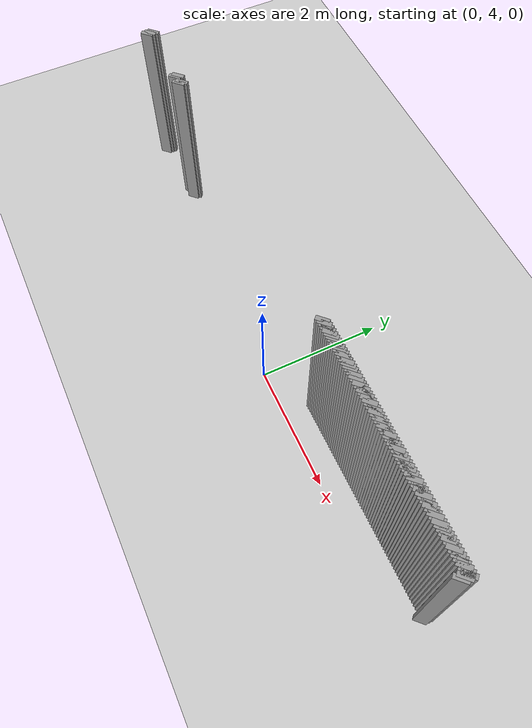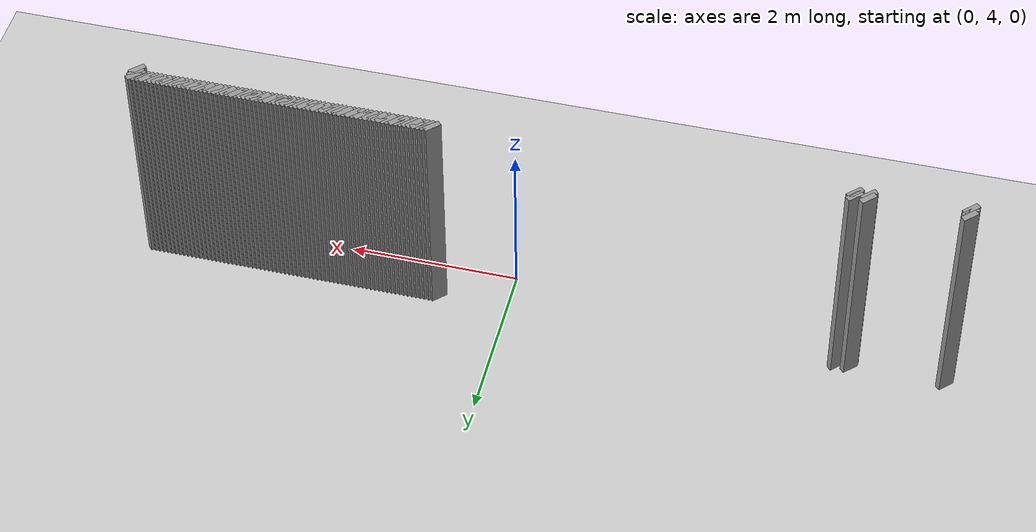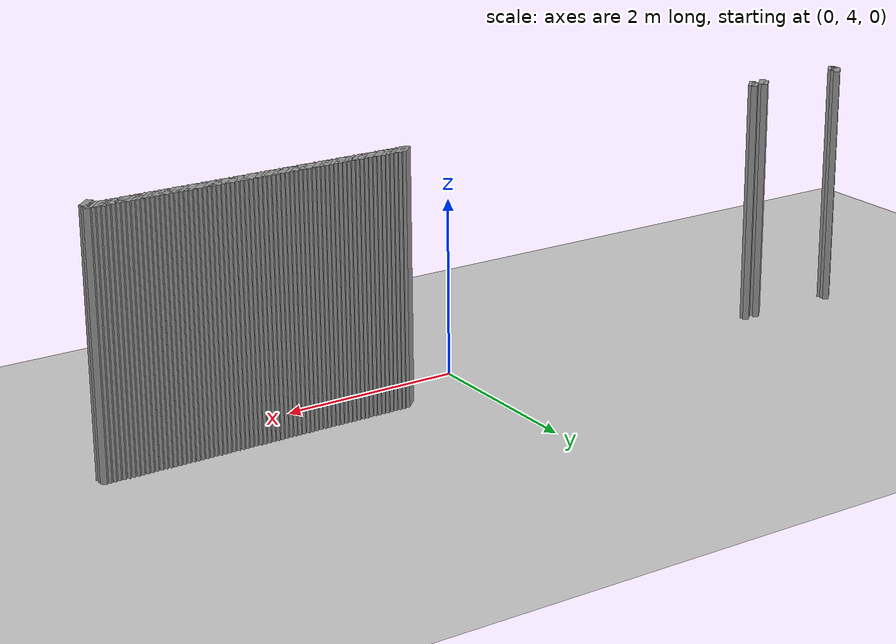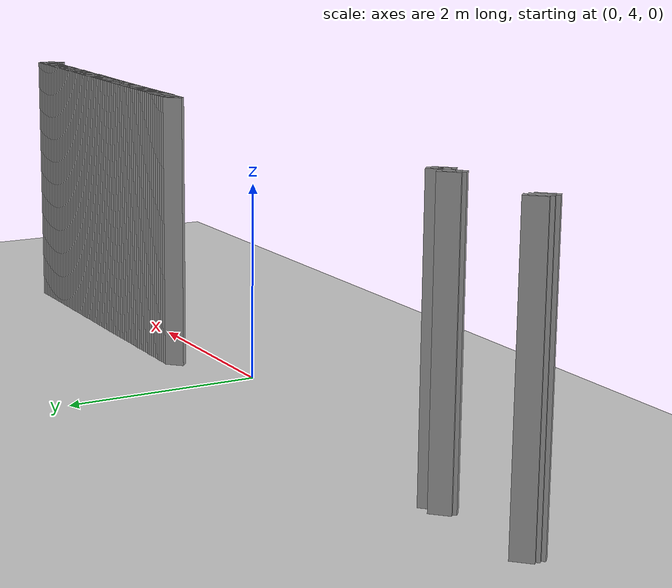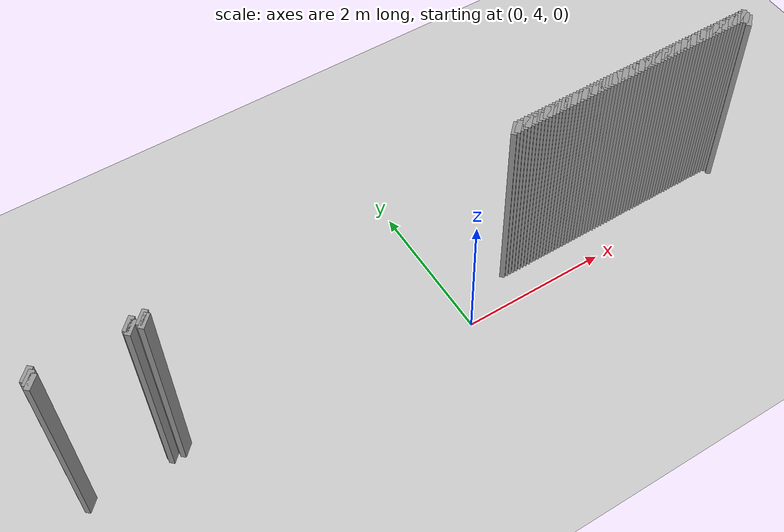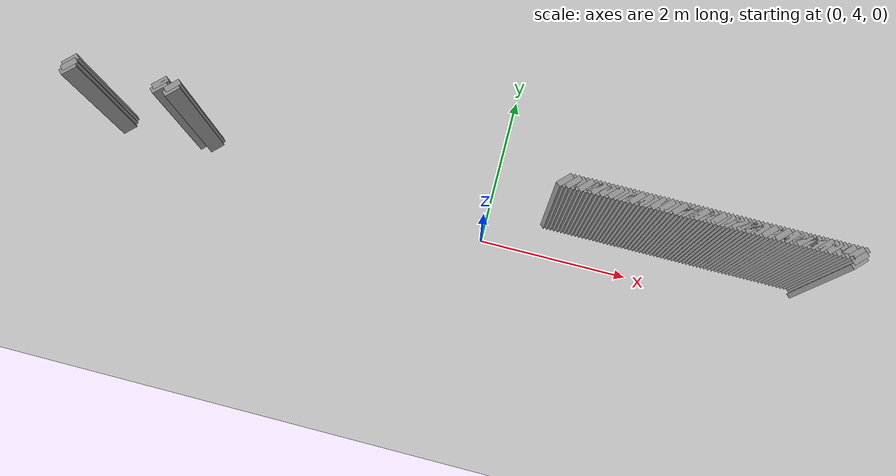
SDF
<sdf version="1.5">
 <world name="default">
  <include><uri>model://ground_plane</uri></include>
  <include><uri>model://sun</uri></include>
  <model name="grey_wall_158">
   <static>1</static>
   <link name="link">
    <pose>0.825 4.475  1.4 0 0 -0.785398163397</pose>
    <collision name="collision"><geometry><box><size>0.0707106781187 .2  2.8</size></box></geometry></collision>
    <visual name="visual">
     <cast_shadows>0</cast_shadows>
     <geometry><box><size>0.0707106781187 .2  2.8</size></box></geometry>
     <material>
      <script>
       <uri>model://grey_wall/materials/scripts</uri>
       <uri>model://grey_wall/materials/textures</uri>
       <name>vrc/grey_wall</name>
      </script>
     </material>
    </visual>
   </link>
  </model>
  <model name="grey_wall_159">
   <static>1</static>
   <link name="link">
    <pose>0.875 4.475  1.4 0 0 -0.785398163397</pose>
    <collision name="collision"><geometry><box><size>0.0707106781187 .2  2.8</size></box></geometry></collision>
    <visual name="visual">
     <cast_shadows>0</cast_shadows>
     <geometry><box><size>0.0707106781187 .2  2.8</size></box></geometry>
     <material>
      <script>
       <uri>model://grey_wall/materials/scripts</uri>
       <uri>model://grey_wall/materials/textures</uri>
       <name>vrc/grey_wall</name>
      </script>
     </material>
    </visual>
   </link>
  </model>
  <model name="grey_wall_160">
   <static>1</static>
   <link name="link">
    <pose>0.925 4.475  1.4 0 0 -0.785398163397</pose>
    <collision name="collision"><geometry><box><size>0.0707106781187 .2  2.8</size></box></geometry></collision>
    <visual name="visual">
     <cast_shadows>0</cast_shadows>
     <geometry><box><size>0.0707106781187 .2  2.8</size></box></geometry>
     <material>
      <script>
       <uri>model://grey_wall/materials/scripts</uri>
       <uri>model://grey_wall/materials/textures</uri>
       <name>vrc/grey_wall</name>
      </script>
     </material>
    </visual>
   </link>
  </model>
  <model name="grey_wall_161">
   <static>1</static>
   <link name="link">
    <pose>0.975 4.475  1.4 0 0 -0.785398163397</pose>
    <collision name="collision"><geometry><box><size>0.0707106781187 .2  2.8</size></box></geometry></collision>
    <visual name="visual">
     <cast_shadows>0</cast_shadows>
     <geometry><box><size>0.0707106781187 .2  2.8</size></box></geometry>
     <material>
      <script>
       <uri>model://grey_wall/materials/scripts</uri>
       <uri>model://grey_wall/materials/textures</uri>
       <name>vrc/grey_wall</name>
      </script>
     </material>
    </visual>
   </link>
  </model>
  <model name="grey_wall_162">
   <static>1</static>
   <link name="link">
    <pose>1.025 4.475  1.4 0 0 -0.785398163397</pose>
    <collision name="collision"><geometry><box><size>0.0707106781187 .2  2.8</size></box></geometry></collision>
    <visual name="visual">
     <cast_shadows>0</cast_shadows>
     <geometry><box><size>0.0707106781187 .2  2.8</size></box></geometry>
     <material>
      <script>
       <uri>model://grey_wall/materials/scripts</uri>
       <uri>model://grey_wall/materials/textures</uri>
       <name>vrc/grey_wall</name>
      </script>
     </material>
    </visual>
   </link>
  </model>
  <model name="grey_wall_163">
   <static>1</static>
   <link name="link">
    <pose>1.075 4.475  1.4 0 0 -0.785398163397</pose>
    <collision name="collision"><geometry><box><size>0.0707106781187 .2  2.8</size></box></geometry></collision>
    <visual name="visual">
     <cast_shadows>0</cast_shadows>
     <geometry><box><size>0.0707106781187 .2  2.8</size></box></geometry>
     <material>
      <script>
       <uri>model://grey_wall/materials/scripts</uri>
       <uri>model://grey_wall/materials/textures</uri>
       <name>vrc/grey_wall</name>
      </script>
     </material>
    </visual>
   </link>
  </model>
  <model name="grey_wall_164">
   <static>1</static>
   <link name="link">
    <pose>1.125 4.475  1.4 0 0 -0.785398163397</pose>
    <collision name="collision"><geometry><box><size>0.0707106781187 .2  2.8</size></box></geometry></collision>
    <visual name="visual">
     <cast_shadows>0</cast_shadows>
     <geometry><box><size>0.0707106781187 .2  2.8</size></box></geometry>
     <material>
      <script>
       <uri>model://grey_wall/materials/scripts</uri>
       <uri>model://grey_wall/materials/textures</uri>
       <name>vrc/grey_wall</name>
      </script>
     </material>
    </visual>
   </link>
  </model>
  <model name="grey_wall_165">
   <static>1</static>
   <link name="link">
    <pose>1.175 4.475  1.4 0 0 -0.785398163397</pose>
    <collision name="collision"><geometry><box><size>0.0707106781187 .2  2.8</size></box></geometry></collision>
    <visual name="visual">
     <cast_shadows>0</cast_shadows>
     <geometry><box><size>0.0707106781187 .2  2.8</size></box></geometry>
     <material>
      <script>
       <uri>model://grey_wall/materials/scripts</uri>
       <uri>model://grey_wall/materials/textures</uri>
       <name>vrc/grey_wall</name>
      </script>
     </material>
    </visual>
   </link>
  </model>
  <model name="grey_wall_166">
   <static>1</static>
   <link name="link">
    <pose>1.225 4.475  1.4 0 0 -0.785398163397</pose>
    <collision name="collision"><geometry><box><size>0.0707106781187 .2  2.8</size></box></geometry></collision>
    <visual name="visual">
     <cast_shadows>0</cast_shadows>
     <geometry><box><size>0.0707106781187 .2  2.8</size></box></geometry>
     <material>
      <script>
       <uri>model://grey_wall/materials/scripts</uri>
       <uri>model://grey_wall/materials/textures</uri>
       <name>vrc/grey_wall</name>
      </script>
     </material>
    </visual>
   </link>
  </model>
  <model name="grey_wall_167">
   <static>1</static>
   <link name="link">
    <pose>1.275 4.475  1.4 0 0 -0.785398163397</pose>
    <collision name="collision"><geometry><box><size>0.0707106781187 .2  2.8</size></box></geometry></collision>
    <visual name="visual">
     <cast_shadows>0</cast_shadows>
     <geometry><box><size>0.0707106781187 .2  2.8</size></box></geometry>
     <material>
      <script>
       <uri>model://grey_wall/materials/scripts</uri>
       <uri>model://grey_wall/materials/textures</uri>
       <name>vrc/grey_wall</name>
      </script>
     </material>
    </visual>
   </link>
  </model>
  <model name="grey_wall_168">
   <static>1</static>
   <link name="link">
    <pose>1.325 4.475  1.4 0 0 -0.785398163397</pose>
    <collision name="collision"><geometry><box><size>0.0707106781187 .2  2.8</size></box></geometry></collision>
    <visual name="visual">
     <cast_shadows>0</cast_shadows>
     <geometry><box><size>0.0707106781187 .2  2.8</size></box></geometry>
     <material>
      <script>
       <uri>model://grey_wall/materials/scripts</uri>
       <uri>model://grey_wall/materials/textures</uri>
       <name>vrc/grey_wall</name>
      </script>
     </material>
    </visual>
   </link>
  </model>
  <model name="grey_wall_169">
   <static>1</static>
   <link name="link">
    <pose>1.375 4.475  1.4 0 0 -0.785398163397</pose>
    <collision name="collision"><geometry><box><size>0.0707106781187 .2  2.8</size></box></geometry></collision>
    <visual name="visual">
     <cast_shadows>0</cast_shadows>
     <geometry><box><size>0.0707106781187 .2  2.8</size></box></geometry>
     <material>
      <script>
       <uri>model://grey_wall/materials/scripts</uri>
       <uri>model://grey_wall/materials/textures</uri>
       <name>vrc/grey_wall</name>
      </script>
     </material>
    </visual>
   </link>
  </model>
  <model name="grey_wall_170">
   <static>1</static>
   <link name="link">
    <pose>1.425 4.475  1.4 0 0 -0.785398163397</pose>
    <collision name="collision"><geometry><box><size>0.0707106781187 .2  2.8</size></box></geometry></collision>
    <visual name="visual">
     <cast_shadows>0</cast_shadows>
     <geometry><box><size>0.0707106781187 .2  2.8</size></box></geometry>
     <material>
      <script>
       <uri>model://grey_wall/materials/scripts</uri>
       <uri>model://grey_wall/materials/textures</uri>
       <name>vrc/grey_wall</name>
      </script>
     </material>
    </visual>
   </link>
  </model>
  <model name="grey_wall_171">
   <static>1</static>
   <link name="link">
    <pose>1.475 4.475  1.4 0 0 -0.785398163397</pose>
    <collision name="collision"><geometry><box><size>0.0707106781187 .2  2.8</size></box></geometry></collision>
    <visual name="visual">
     <cast_shadows>0</cast_shadows>
     <geometry><box><size>0.0707106781187 .2  2.8</size></box></geometry>
     <material>
      <script>
       <uri>model://grey_wall/materials/scripts</uri>
       <uri>model://grey_wall/materials/textures</uri>
       <name>vrc/grey_wall</name>
      </script>
     </material>
    </visual>
   </link>
  </model>
  <model name="grey_wall_172">
   <static>1</static>
   <link name="link">
    <pose>1.525 4.475  1.4 0 0 -0.785398163397</pose>
    <collision name="collision"><geometry><box><size>0.0707106781187 .2  2.8</size></box></geometry></collision>
    <visual name="visual">
     <cast_shadows>0</cast_shadows>
     <geometry><box><size>0.0707106781187 .2  2.8</size></box></geometry>
     <material>
      <script>
       <uri>model://grey_wall/materials/scripts</uri>
       <uri>model://grey_wall/materials/textures</uri>
       <name>vrc/grey_wall</name>
      </script>
     </material>
    </visual>
   </link>
  </model>
  <model name="grey_wall_173">
   <static>1</static>
   <link name="link">
    <pose>1.575 4.475  1.4 0 0 -0.785398163397</pose>
    <collision name="collision"><geometry><box><size>0.0707106781187 .2  2.8</size></box></geometry></collision>
    <visual name="visual">
     <cast_shadows>0</cast_shadows>
     <geometry><box><size>0.0707106781187 .2  2.8</size></box></geometry>
     <material>
      <script>
       <uri>model://grey_wall/materials/scripts</uri>
       <uri>model://grey_wall/materials/textures</uri>
       <name>vrc/grey_wall</name>
      </script>
     </material>
    </visual>
   </link>
  </model>
  <model name="grey_wall_174">
   <static>1</static>
   <link name="link">
    <pose>1.625 4.475  1.4 0 0 -0.785398163397</pose>
    <collision name="collision"><geometry><box><size>0.0707106781187 .2  2.8</size></box></geometry></collision>
    <visual name="visual">
     <cast_shadows>0</cast_shadows>
     <geometry><box><size>0.0707106781187 .2  2.8</size></box></geometry>
     <material>
      <script>
       <uri>model://grey_wall/materials/scripts</uri>
       <uri>model://grey_wall/materials/textures</uri>
       <name>vrc/grey_wall</name>
      </script>
     </material>
    </visual>
   </link>
  </model>
  <model name="grey_wall_175">
   <static>1</static>
   <link name="link">
    <pose>1.675 4.475  1.4 0 0 -0.785398163397</pose>
    <collision name="collision"><geometry><box><size>0.0707106781187 .2  2.8</size></box></geometry></collision>
    <visual name="visual">
     <cast_shadows>0</cast_shadows>
     <geometry><box><size>0.0707106781187 .2  2.8</size></box></geometry>
     <material>
      <script>
       <uri>model://grey_wall/materials/scripts</uri>
       <uri>model://grey_wall/materials/textures</uri>
       <name>vrc/grey_wall</name>
      </script>
     </material>
    </visual>
   </link>
  </model>
  <model name="grey_wall_176">
   <static>1</static>
   <link name="link">
    <pose>1.725 4.475  1.4 0 0 -0.785398163397</pose>
    <collision name="collision"><geometry><box><size>0.0707106781187 .2  2.8</size></box></geometry></collision>
    <visual name="visual">
     <cast_shadows>0</cast_shadows>
     <geometry><box><size>0.0707106781187 .2  2.8</size></box></geometry>
     <material>
      <script>
       <uri>model://grey_wall/materials/scripts</uri>
       <uri>model://grey_wall/materials/textures</uri>
       <name>vrc/grey_wall</name>
      </script>
     </material>
    </visual>
   </link>
  </model>
  <model name="grey_wall_177">
   <static>1</static>
   <link name="link">
    <pose>1.775 4.475  1.4 0 0 -0.785398163397</pose>
    <collision name="collision"><geometry><box><size>0.0707106781187 .2  2.8</size></box></geometry></collision>
    <visual name="visual">
     <cast_shadows>0</cast_shadows>
     <geometry><box><size>0.0707106781187 .2  2.8</size></box></geometry>
     <material>
      <script>
       <uri>model://grey_wall/materials/scripts</uri>
       <uri>model://grey_wall/materials/textures</uri>
       <name>vrc/grey_wall</name>
      </script>
     </material>
    </visual>
   </link>
  </model>
  <model name="grey_wall_178">
   <static>1</static>
   <link name="link">
    <pose>1.825 4.475  1.4 0 0 -0.785398163397</pose>
    <collision name="collision"><geometry><box><size>0.0707106781187 .2  2.8</size></box></geometry></collision>
    <visual name="visual">
     <cast_shadows>0</cast_shadows>
     <geometry><box><size>0.0707106781187 .2  2.8</size></box></geometry>
     <material>
      <script>
       <uri>model://grey_wall/materials/scripts</uri>
       <uri>model://grey_wall/materials/textures</uri>
       <name>vrc/grey_wall</name>
      </script>
     </material>
    </visual>
   </link>
  </model>
  <model name="grey_wall_179">
   <static>1</static>
   <link name="link">
    <pose>1.875 4.475  1.4 0 0 -0.785398163397</pose>
    <collision name="collision"><geometry><box><size>0.0707106781187 .2  2.8</size></box></geometry></collision>
    <visual name="visual">
     <cast_shadows>0</cast_shadows>
     <geometry><box><size>0.0707106781187 .2  2.8</size></box></geometry>
     <material>
      <script>
       <uri>model://grey_wall/materials/scripts</uri>
       <uri>model://grey_wall/materials/textures</uri>
       <name>vrc/grey_wall</name>
      </script>
     </material>
    </visual>
   </link>
  </model>
  <model name="grey_wall_180">
   <static>1</static>
   <link name="link">
    <pose>1.925 4.475  1.4 0 0 -0.785398163397</pose>
    <collision name="collision"><geometry><box><size>0.0707106781187 .2  2.8</size></box></geometry></collision>
    <visual name="visual">
     <cast_shadows>0</cast_shadows>
     <geometry><box><size>0.0707106781187 .2  2.8</size></box></geometry>
     <material>
      <script>
       <uri>model://grey_wall/materials/scripts</uri>
       <uri>model://grey_wall/materials/textures</uri>
       <name>vrc/grey_wall</name>
      </script>
     </material>
    </visual>
   </link>
  </model>
  <model name="grey_wall_181">
   <static>1</static>
   <link name="link">
    <pose>1.975 4.475  1.4 0 0 -0.785398163397</pose>
    <collision name="collision"><geometry><box><size>0.0707106781187 .2  2.8</size></box></geometry></collision>
    <visual name="visual">
     <cast_shadows>0</cast_shadows>
     <geometry><box><size>0.0707106781187 .2  2.8</size></box></geometry>
     <material>
      <script>
       <uri>model://grey_wall/materials/scripts</uri>
       <uri>model://grey_wall/materials/textures</uri>
       <name>vrc/grey_wall</name>
      </script>
     </material>
    </visual>
   </link>
  </model>
  <model name="grey_wall_182">
   <static>1</static>
   <link name="link">
    <pose>2.025 4.475  1.4 0 0 -0.785398163397</pose>
    <collision name="collision"><geometry><box><size>0.0707106781187 .2  2.8</size></box></geometry></collision>
    <visual name="visual">
     <cast_shadows>0</cast_shadows>
     <geometry><box><size>0.0707106781187 .2  2.8</size></box></geometry>
     <material>
      <script>
       <uri>model://grey_wall/materials/scripts</uri>
       <uri>model://grey_wall/materials/textures</uri>
       <name>vrc/grey_wall</name>
      </script>
     </material>
    </visual>
   </link>
  </model>
  <model name="grey_wall_183">
   <static>1</static>
   <link name="link">
    <pose>2.075 4.475  1.4 0 0 -0.785398163397</pose>
    <collision name="collision"><geometry><box><size>0.0707106781187 .2  2.8</size></box></geometry></collision>
    <visual name="visual">
     <cast_shadows>0</cast_shadows>
     <geometry><box><size>0.0707106781187 .2  2.8</size></box></geometry>
     <material>
      <script>
       <uri>model://grey_wall/materials/scripts</uri>
       <uri>model://grey_wall/materials/textures</uri>
       <name>vrc/grey_wall</name>
      </script>
     </material>
    </visual>
   </link>
  </model>
  <model name="grey_wall_184">
   <static>1</static>
   <link name="link">
    <pose>2.125 4.475  1.4 0 0 -0.785398163397</pose>
    <collision name="collision"><geometry><box><size>0.0707106781187 .2  2.8</size></box></geometry></collision>
    <visual name="visual">
     <cast_shadows>0</cast_shadows>
     <geometry><box><size>0.0707106781187 .2  2.8</size></box></geometry>
     <material>
      <script>
       <uri>model://grey_wall/materials/scripts</uri>
       <uri>model://grey_wall/materials/textures</uri>
       <name>vrc/grey_wall</name>
      </script>
     </material>
    </visual>
   </link>
  </model>
  <model name="grey_wall_185">
   <static>1</static>
   <link name="link">
    <pose>2.175 4.475  1.4 0 0 -0.785398163397</pose>
    <collision name="collision"><geometry><box><size>0.0707106781187 .2  2.8</size></box></geometry></collision>
    <visual name="visual">
     <cast_shadows>0</cast_shadows>
     <geometry><box><size>0.0707106781187 .2  2.8</size></box></geometry>
     <material>
      <script>
       <uri>model://grey_wall/materials/scripts</uri>
       <uri>model://grey_wall/materials/textures</uri>
       <name>vrc/grey_wall</name>
      </script>
     </material>
    </visual>
   </link>
  </model>
  <model name="grey_wall_186">
   <static>1</static>
   <link name="link">
    <pose>2.225 4.475  1.4 0 0 -0.785398163397</pose>
    <collision name="collision"><geometry><box><size>0.0707106781187 .2  2.8</size></box></geometry></collision>
    <visual name="visual">
     <cast_shadows>0</cast_shadows>
     <geometry><box><size>0.0707106781187 .2  2.8</size></box></geometry>
     <material>
      <script>
       <uri>model://grey_wall/materials/scripts</uri>
       <uri>model://grey_wall/materials/textures</uri>
       <name>vrc/grey_wall</name>
      </script>
     </material>
    </visual>
   </link>
  </model>
  <model name="grey_wall_187">
   <static>1</static>
   <link name="link">
    <pose>2.275 4.475  1.4 0 0 -0.785398163397</pose>
    <collision name="collision"><geometry><box><size>0.0707106781187 .2  2.8</size></box></geometry></collision>
    <visual name="visual">
     <cast_shadows>0</cast_shadows>
     <geometry><box><size>0.0707106781187 .2  2.8</size></box></geometry>
     <material>
      <script>
       <uri>model://grey_wall/materials/scripts</uri>
       <uri>model://grey_wall/materials/textures</uri>
       <name>vrc/grey_wall</name>
      </script>
     </material>
    </visual>
   </link>
  </model>
  <model name="grey_wall_188">
   <static>1</static>
   <link name="link">
    <pose>2.325 4.475  1.4 0 0 -0.785398163397</pose>
    <collision name="collision"><geometry><box><size>0.0707106781187 .2  2.8</size></box></geometry></collision>
    <visual name="visual">
     <cast_shadows>0</cast_shadows>
     <geometry><box><size>0.0707106781187 .2  2.8</size></box></geometry>
     <material>
      <script>
       <uri>model://grey_wall/materials/scripts</uri>
       <uri>model://grey_wall/materials/textures</uri>
       <name>vrc/grey_wall</name>
      </script>
     </material>
    </visual>
   </link>
  </model>
  <model name="grey_wall_189">
   <static>1</static>
   <link name="link">
    <pose>2.375 4.475  1.4 0 0 -0.785398163397</pose>
    <collision name="collision"><geometry><box><size>0.0707106781187 .2  2.8</size></box></geometry></collision>
    <visual name="visual">
     <cast_shadows>0</cast_shadows>
     <geometry><box><size>0.0707106781187 .2  2.8</size></box></geometry>
     <material>
      <script>
       <uri>model://grey_wall/materials/scripts</uri>
       <uri>model://grey_wall/materials/textures</uri>
       <name>vrc/grey_wall</name>
      </script>
     </material>
    </visual>
   </link>
  </model>
  <model name="grey_wall_190">
   <static>1</static>
   <link name="link">
    <pose>2.425 4.475  1.4 0 0 -0.785398163397</pose>
    <collision name="collision"><geometry><box><size>0.0707106781187 .2  2.8</size></box></geometry></collision>
    <visual name="visual">
     <cast_shadows>0</cast_shadows>
     <geometry><box><size>0.0707106781187 .2  2.8</size></box></geometry>
     <material>
      <script>
       <uri>model://grey_wall/materials/scripts</uri>
       <uri>model://grey_wall/materials/textures</uri>
       <name>vrc/grey_wall</name>
      </script>
     </material>
    </visual>
   </link>
  </model>
  <model name="grey_wall_191">
   <static>1</static>
   <link name="link">
    <pose>2.475 4.475  1.4 0 0 -0.785398163397</pose>
    <collision name="collision"><geometry><box><size>0.0707106781187 .2  2.8</size></box></geometry></collision>
    <visual name="visual">
     <cast_shadows>0</cast_shadows>
     <geometry><box><size>0.0707106781187 .2  2.8</size></box></geometry>
     <material>
      <script>
       <uri>model://grey_wall/materials/scripts</uri>
       <uri>model://grey_wall/materials/textures</uri>
       <name>vrc/grey_wall</name>
      </script>
     </material>
    </visual>
   </link>
  </model>
  <model name="grey_wall_192">
   <static>1</static>
   <link name="link">
    <pose>2.525 4.475  1.4 0 0 -0.785398163397</pose>
    <collision name="collision"><geometry><box><size>0.0707106781187 .2  2.8</size></box></geometry></collision>
    <visual name="visual">
     <cast_shadows>0</cast_shadows>
     <geometry><box><size>0.0707106781187 .2  2.8</size></box></geometry>
     <material>
      <script>
       <uri>model://grey_wall/materials/scripts</uri>
       <uri>model://grey_wall/materials/textures</uri>
       <name>vrc/grey_wall</name>
      </script>
     </material>
    </visual>
   </link>
  </model>
  <model name="grey_wall_193">
   <static>1</static>
   <link name="link">
    <pose>2.575 4.475  1.4 0 0 -0.785398163397</pose>
    <collision name="collision"><geometry><box><size>0.0707106781187 .2  2.8</size></box></geometry></collision>
    <visual name="visual">
     <cast_shadows>0</cast_shadows>
     <geometry><box><size>0.0707106781187 .2  2.8</size></box></geometry>
     <material>
      <script>
       <uri>model://grey_wall/materials/scripts</uri>
       <uri>model://grey_wall/materials/textures</uri>
       <name>vrc/grey_wall</name>
      </script>
     </material>
    </visual>
   </link>
  </model>
  <model name="grey_wall_194">
   <static>1</static>
   <link name="link">
    <pose>2.625 4.475  1.4 0 0 -0.785398163397</pose>
    <collision name="collision"><geometry><box><size>0.0707106781187 .2  2.8</size></box></geometry></collision>
    <visual name="visual">
     <cast_shadows>0</cast_shadows>
     <geometry><box><size>0.0707106781187 .2  2.8</size></box></geometry>
     <material>
      <script>
       <uri>model://grey_wall/materials/scripts</uri>
       <uri>model://grey_wall/materials/textures</uri>
       <name>vrc/grey_wall</name>
      </script>
     </material>
    </visual>
   </link>
  </model>
  <model name="grey_wall_195">
   <static>1</static>
   <link name="link">
    <pose>2.675 4.475  1.4 0 0 -0.785398163397</pose>
    <collision name="collision"><geometry><box><size>0.0707106781187 .2  2.8</size></box></geometry></collision>
    <visual name="visual">
     <cast_shadows>0</cast_shadows>
     <geometry><box><size>0.0707106781187 .2  2.8</size></box></geometry>
     <material>
      <script>
       <uri>model://grey_wall/materials/scripts</uri>
       <uri>model://grey_wall/materials/textures</uri>
       <name>vrc/grey_wall</name>
      </script>
     </material>
    </visual>
   </link>
  </model>
  <model name="grey_wall_196">
   <static>1</static>
   <link name="link">
    <pose>2.725 4.475  1.4 0 0 -0.785398163397</pose>
    <collision name="collision"><geometry><box><size>0.0707106781187 .2  2.8</size></box></geometry></collision>
    <visual name="visual">
     <cast_shadows>0</cast_shadows>
     <geometry><box><size>0.0707106781187 .2  2.8</size></box></geometry>
     <material>
      <script>
       <uri>model://grey_wall/materials/scripts</uri>
       <uri>model://grey_wall/materials/textures</uri>
       <name>vrc/grey_wall</name>
      </script>
     </material>
    </visual>
   </link>
  </model>
  <model name="grey_wall_197">
   <static>1</static>
   <link name="link">
    <pose>2.775 4.475  1.4 0 0 -0.785398163397</pose>
    <collision name="collision"><geometry><box><size>0.0707106781187 .2  2.8</size></box></geometry></collision>
    <visual name="visual">
     <cast_shadows>0</cast_shadows>
     <geometry><box><size>0.0707106781187 .2  2.8</size></box></geometry>
     <material>
      <script>
       <uri>model://grey_wall/materials/scripts</uri>
       <uri>model://grey_wall/materials/textures</uri>
       <name>vrc/grey_wall</name>
      </script>
     </material>
    </visual>
   </link>
  </model>
  <model name="grey_wall_198">
   <static>1</static>
   <link name="link">
    <pose>2.825 4.475  1.4 0 0 -0.785398163397</pose>
    <collision name="collision"><geometry><box><size>0.0707106781187 .2  2.8</size></box></geometry></collision>
    <visual name="visual">
     <cast_shadows>0</cast_shadows>
     <geometry><box><size>0.0707106781187 .2  2.8</size></box></geometry>
     <material>
      <script>
       <uri>model://grey_wall/materials/scripts</uri>
       <uri>model://grey_wall/materials/textures</uri>
       <name>vrc/grey_wall</name>
      </script>
     </material>
    </visual>
   </link>
  </model>
  <model name="grey_wall_199">
   <static>1</static>
   <link name="link">
    <pose>2.875 4.475  1.4 0 0 -0.785398163397</pose>
    <collision name="collision"><geometry><box><size>0.0707106781187 .2  2.8</size></box></geometry></collision>
    <visual name="visual">
     <cast_shadows>0</cast_shadows>
     <geometry><box><size>0.0707106781187 .2  2.8</size></box></geometry>
     <material>
      <script>
       <uri>model://grey_wall/materials/scripts</uri>
       <uri>model://grey_wall/materials/textures</uri>
       <name>vrc/grey_wall</name>
      </script>
     </material>
    </visual>
   </link>
  </model>
  <model name="grey_wall_200">
   <static>1</static>
   <link name="link">
    <pose>2.925 4.475  1.4 0 0 -0.785398163397</pose>
    <collision name="collision"><geometry><box><size>0.0707106781187 .2  2.8</size></box></geometry></collision>
    <visual name="visual">
     <cast_shadows>0</cast_shadows>
     <geometry><box><size>0.0707106781187 .2  2.8</size></box></geometry>
     <material>
      <script>
       <uri>model://grey_wall/materials/scripts</uri>
       <uri>model://grey_wall/materials/textures</uri>
       <name>vrc/grey_wall</name>
      </script>
     </material>
    </visual>
   </link>
  </model>
  <model name="grey_wall_201">
   <static>1</static>
   <link name="link">
    <pose>2.975 4.475  1.4 0 0 -0.785398163397</pose>
    <collision name="collision"><geometry><box><size>0.0707106781187 .2  2.8</size></box></geometry></collision>
    <visual name="visual">
     <cast_shadows>0</cast_shadows>
     <geometry><box><size>0.0707106781187 .2  2.8</size></box></geometry>
     <material>
      <script>
       <uri>model://grey_wall/materials/scripts</uri>
       <uri>model://grey_wall/materials/textures</uri>
       <name>vrc/grey_wall</name>
      </script>
     </material>
    </visual>
   </link>
  </model>
  <model name="grey_wall_202">
   <static>1</static>
   <link name="link">
    <pose>3.025 4.475  1.4 0 0 -0.785398163397</pose>
    <collision name="collision"><geometry><box><size>0.0707106781187 .2  2.8</size></box></geometry></collision>
    <visual name="visual">
     <cast_shadows>0</cast_shadows>
     <geometry><box><size>0.0707106781187 .2  2.8</size></box></geometry>
     <material>
      <script>
       <uri>model://grey_wall/materials/scripts</uri>
       <uri>model://grey_wall/materials/textures</uri>
       <name>vrc/grey_wall</name>
      </script>
     </material>
    </visual>
   </link>
  </model>
  <model name="grey_wall_203">
   <static>1</static>
   <link name="link">
    <pose>3.075 4.475  1.4 0 0 -0.785398163397</pose>
    <collision name="collision"><geometry><box><size>0.0707106781187 .2  2.8</size></box></geometry></collision>
    <visual name="visual">
     <cast_shadows>0</cast_shadows>
     <geometry><box><size>0.0707106781187 .2  2.8</size></box></geometry>
     <material>
      <script>
       <uri>model://grey_wall/materials/scripts</uri>
       <uri>model://grey_wall/materials/textures</uri>
       <name>vrc/grey_wall</name>
      </script>
     </material>
    </visual>
   </link>
  </model>
  <model name="grey_wall_204">
   <static>1</static>
   <link name="link">
    <pose>3.125 4.475  1.4 0 0 -0.785398163397</pose>
    <collision name="collision"><geometry><box><size>0.0707106781187 .2  2.8</size></box></geometry></collision>
    <visual name="visual">
     <cast_shadows>0</cast_shadows>
     <geometry><box><size>0.0707106781187 .2  2.8</size></box></geometry>
     <material>
      <script>
       <uri>model://grey_wall/materials/scripts</uri>
       <uri>model://grey_wall/materials/textures</uri>
       <name>vrc/grey_wall</name>
      </script>
     </material>
    </visual>
   </link>
  </model>
  <model name="grey_wall_205">
   <static>1</static>
   <link name="link">
    <pose>3.175 4.475  1.4 0 0 -0.785398163397</pose>
    <collision name="collision"><geometry><box><size>0.0707106781187 .2  2.8</size></box></geometry></collision>
    <visual name="visual">
     <cast_shadows>0</cast_shadows>
     <geometry><box><size>0.0707106781187 .2  2.8</size></box></geometry>
     <material>
      <script>
       <uri>model://grey_wall/materials/scripts</uri>
       <uri>model://grey_wall/materials/textures</uri>
       <name>vrc/grey_wall</name>
      </script>
     </material>
    </visual>
   </link>
  </model>
  <model name="grey_wall_206">
   <static>1</static>
   <link name="link">
    <pose>3.225 4.475  1.4 0 0 -0.785398163397</pose>
    <collision name="collision"><geometry><box><size>0.0707106781187 .2  2.8</size></box></geometry></collision>
    <visual name="visual">
     <cast_shadows>0</cast_shadows>
     <geometry><box><size>0.0707106781187 .2  2.8</size></box></geometry>
     <material>
      <script>
       <uri>model://grey_wall/materials/scripts</uri>
       <uri>model://grey_wall/materials/textures</uri>
       <name>vrc/grey_wall</name>
      </script>
     </material>
    </visual>
   </link>
  </model>
  <model name="grey_wall_207">
   <static>1</static>
   <link name="link">
    <pose>3.275 4.475  1.4 0 0 -0.785398163397</pose>
    <collision name="collision"><geometry><box><size>0.0707106781187 .2  2.8</size></box></geometry></collision>
    <visual name="visual">
     <cast_shadows>0</cast_shadows>
     <geometry><box><size>0.0707106781187 .2  2.8</size></box></geometry>
     <material>
      <script>
       <uri>model://grey_wall/materials/scripts</uri>
       <uri>model://grey_wall/materials/textures</uri>
       <name>vrc/grey_wall</name>
      </script>
     </material>
    </visual>
   </link>
  </model>
  <model name="grey_wall_208">
   <static>1</static>
   <link name="link">
    <pose>3.325 4.475  1.4 0 0 -0.785398163397</pose>
    <collision name="collision"><geometry><box><size>0.0707106781187 .2  2.8</size></box></geometry></collision>
    <visual name="visual">
     <cast_shadows>0</cast_shadows>
     <geometry><box><size>0.0707106781187 .2  2.8</size></box></geometry>
     <material>
      <script>
       <uri>model://grey_wall/materials/scripts</uri>
       <uri>model://grey_wall/materials/textures</uri>
       <name>vrc/grey_wall</name>
      </script>
     </material>
    </visual>
   </link>
  </model>
  <model name="grey_wall_209">
   <static>1</static>
   <link name="link">
    <pose>3.375 4.475  1.4 0 0 -0.785398163397</pose>
    <collision name="collision"><geometry><box><size>0.0707106781187 .2  2.8</size></box></geometry></collision>
    <visual name="visual">
     <cast_shadows>0</cast_shadows>
     <geometry><box><size>0.0707106781187 .2  2.8</size></box></geometry>
     <material>
      <script>
       <uri>model://grey_wall/materials/scripts</uri>
       <uri>model://grey_wall/materials/textures</uri>
       <name>vrc/grey_wall</name>
      </script>
     </material>
    </visual>
   </link>
  </model>
  <model name="grey_wall_210">
   <static>1</static>
   <link name="link">
    <pose>3.425 4.475  1.4 0 0 -0.785398163397</pose>
    <collision name="collision"><geometry><box><size>0.0707106781187 .2  2.8</size></box></geometry></collision>
    <visual name="visual">
     <cast_shadows>0</cast_shadows>
     <geometry><box><size>0.0707106781187 .2  2.8</size></box></geometry>
     <material>
      <script>
       <uri>model://grey_wall/materials/scripts</uri>
       <uri>model://grey_wall/materials/textures</uri>
       <name>vrc/grey_wall</name>
      </script>
     </material>
    </visual>
   </link>
  </model>
  <model name="grey_wall_211">
   <static>1</static>
   <link name="link">
    <pose>3.475 4.475  1.4 0 0 -0.785398163397</pose>
    <collision name="collision"><geometry><box><size>0.0707106781187 .2  2.8</size></box></geometry></collision>
    <visual name="visual">
     <cast_shadows>0</cast_shadows>
     <geometry><box><size>0.0707106781187 .2  2.8</size></box></geometry>
     <material>
      <script>
       <uri>model://grey_wall/materials/scripts</uri>
       <uri>model://grey_wall/materials/textures</uri>
       <name>vrc/grey_wall</name>
      </script>
     </material>
    </visual>
   </link>
  </model>
  <model name="grey_wall_212">
   <static>1</static>
   <link name="link">
    <pose>3.525 4.475  1.4 0 0 -0.785398163397</pose>
    <collision name="collision"><geometry><box><size>0.0707106781187 .2  2.8</size></box></geometry></collision>
    <visual name="visual">
     <cast_shadows>0</cast_shadows>
     <geometry><box><size>0.0707106781187 .2  2.8</size></box></geometry>
     <material>
      <script>
       <uri>model://grey_wall/materials/scripts</uri>
       <uri>model://grey_wall/materials/textures</uri>
       <name>vrc/grey_wall</name>
      </script>
     </material>
    </visual>
   </link>
  </model>
  <model name="grey_wall_213">
   <static>1</static>
   <link name="link">
    <pose>3.575 4.475  1.4 0 0 -0.785398163397</pose>
    <collision name="collision"><geometry><box><size>0.0707106781187 .2  2.8</size></box></geometry></collision>
    <visual name="visual">
     <cast_shadows>0</cast_shadows>
     <geometry><box><size>0.0707106781187 .2  2.8</size></box></geometry>
     <material>
      <script>
       <uri>model://grey_wall/materials/scripts</uri>
       <uri>model://grey_wall/materials/textures</uri>
       <name>vrc/grey_wall</name>
      </script>
     </material>
    </visual>
   </link>
  </model>
  <model name="grey_wall_214">
   <static>1</static>
   <link name="link">
    <pose>3.625 4.475  1.4 0 0 -0.785398163397</pose>
    <collision name="collision"><geometry><box><size>0.0707106781187 .2  2.8</size></box></geometry></collision>
    <visual name="visual">
     <cast_shadows>0</cast_shadows>
     <geometry><box><size>0.0707106781187 .2  2.8</size></box></geometry>
     <material>
      <script>
       <uri>model://grey_wall/materials/scripts</uri>
       <uri>model://grey_wall/materials/textures</uri>
       <name>vrc/grey_wall</name>
      </script>
     </material>
    </visual>
   </link>
  </model>
  <model name="grey_wall_215">
   <static>1</static>
   <link name="link">
    <pose>3.675 4.475  1.4 0 0 -0.785398163397</pose>
    <collision name="collision"><geometry><box><size>0.0707106781187 .2  2.8</size></box></geometry></collision>
    <visual name="visual">
     <cast_shadows>0</cast_shadows>
     <geometry><box><size>0.0707106781187 .2  2.8</size></box></geometry>
     <material>
      <script>
       <uri>model://grey_wall/materials/scripts</uri>
       <uri>model://grey_wall/materials/textures</uri>
       <name>vrc/grey_wall</name>
      </script>
     </material>
    </visual>
   </link>
  </model>
  <model name="grey_wall_216">
   <static>1</static>
   <link name="link">
    <pose>3.725 4.475  1.4 0 0 -0.785398163397</pose>
    <collision name="collision"><geometry><box><size>0.0707106781187 .2  2.8</size></box></geometry></collision>
    <visual name="visual">
     <cast_shadows>0</cast_shadows>
     <geometry><box><size>0.0707106781187 .2  2.8</size></box></geometry>
     <material>
      <script>
       <uri>model://grey_wall/materials/scripts</uri>
       <uri>model://grey_wall/materials/textures</uri>
       <name>vrc/grey_wall</name>
      </script>
     </material>
    </visual>
   </link>
  </model>
  <model name="grey_wall_217">
   <static>1</static>
   <link name="link">
    <pose>3.775 4.475  1.4 0 0 -0.785398163397</pose>
    <collision name="collision"><geometry><box><size>0.0707106781187 .2  2.8</size></box></geometry></collision>
    <visual name="visual">
     <cast_shadows>0</cast_shadows>
     <geometry><box><size>0.0707106781187 .2  2.8</size></box></geometry>
     <material>
      <script>
       <uri>model://grey_wall/materials/scripts</uri>
       <uri>model://grey_wall/materials/textures</uri>
       <name>vrc/grey_wall</name>
      </script>
     </material>
    </visual>
   </link>
  </model>
  <model name="grey_wall_218">
   <static>1</static>
   <link name="link">
    <pose>3.825 4.475  1.4 0 0 -0.785398163397</pose>
    <collision name="collision"><geometry><box><size>0.0707106781187 .2  2.8</size></box></geometry></collision>
    <visual name="visual">
     <cast_shadows>0</cast_shadows>
     <geometry><box><size>0.0707106781187 .2  2.8</size></box></geometry>
     <material>
      <script>
       <uri>model://grey_wall/materials/scripts</uri>
       <uri>model://grey_wall/materials/textures</uri>
       <name>vrc/grey_wall</name>
      </script>
     </material>
    </visual>
   </link>
  </model>
  <model name="grey_wall_219">
   <static>1</static>
   <link name="link">
    <pose>3.875 4.475  1.4 0 0 -0.785398163397</pose>
    <collision name="collision"><geometry><box><size>0.0707106781187 .2  2.8</size></box></geometry></collision>
    <visual name="visual">
     <cast_shadows>0</cast_shadows>
     <geometry><box><size>0.0707106781187 .2  2.8</size></box></geometry>
     <material>
      <script>
       <uri>model://grey_wall/materials/scripts</uri>
       <uri>model://grey_wall/materials/textures</uri>
       <name>vrc/grey_wall</name>
      </script>
     </material>
    </visual>
   </link>
  </model>
  <model name="grey_wall_220">
   <static>1</static>
   <link name="link">
    <pose>3.925 4.475  1.4 0 0 -0.785398163397</pose>
    <collision name="collision"><geometry><box><size>0.0707106781187 .2  2.8</size></box></geometry></collision>
    <visual name="visual">
     <cast_shadows>0</cast_shadows>
     <geometry><box><size>0.0707106781187 .2  2.8</size></box></geometry>
     <material>
      <script>
       <uri>model://grey_wall/materials/scripts</uri>
       <uri>model://grey_wall/materials/textures</uri>
       <name>vrc/grey_wall</name>
      </script>
     </material>
    </visual>
   </link>
  </model>
  <model name="grey_wall_221">
   <static>1</static>
   <link name="link">
    <pose>3.975 4.475  1.4 0 0 -0.785398163397</pose>
    <collision name="collision"><geometry><box><size>0.0707106781187 .2  2.8</size></box></geometry></collision>
    <visual name="visual">
     <cast_shadows>0</cast_shadows>
     <geometry><box><size>0.0707106781187 .2  2.8</size></box></geometry>
     <material>
      <script>
       <uri>model://grey_wall/materials/scripts</uri>
       <uri>model://grey_wall/materials/textures</uri>
       <name>vrc/grey_wall</name>
      </script>
     </material>
    </visual>
   </link>
  </model>
  <model name="grey_wall_222">
   <static>1</static>
   <link name="link">
    <pose>4.025 4.475  1.4 0 0 -0.785398163397</pose>
    <collision name="collision"><geometry><box><size>0.0707106781187 .2  2.8</size></box></geometry></collision>
    <visual name="visual">
     <cast_shadows>0</cast_shadows>
     <geometry><box><size>0.0707106781187 .2  2.8</size></box></geometry>
     <material>
      <script>
       <uri>model://grey_wall/materials/scripts</uri>
       <uri>model://grey_wall/materials/textures</uri>
       <name>vrc/grey_wall</name>
      </script>
     </material>
    </visual>
   </link>
  </model>
  <model name="grey_wall_223">
   <static>1</static>
   <link name="link">
    <pose>4.075 4.475  1.4 0 0 -0.785398163397</pose>
    <collision name="collision"><geometry><box><size>0.0707106781187 .2  2.8</size></box></geometry></collision>
    <visual name="visual">
     <cast_shadows>0</cast_shadows>
     <geometry><box><size>0.0707106781187 .2  2.8</size></box></geometry>
     <material>
      <script>
       <uri>model://grey_wall/materials/scripts</uri>
       <uri>model://grey_wall/materials/textures</uri>
       <name>vrc/grey_wall</name>
      </script>
     </material>
    </visual>
   </link>
  </model>
  <model name="grey_wall_224">
   <static>1</static>
   <link name="link">
    <pose>4.125 4.475  1.4 0 0 -0.785398163397</pose>
    <collision name="collision"><geometry><box><size>0.0707106781187 .2  2.8</size></box></geometry></collision>
    <visual name="visual">
     <cast_shadows>0</cast_shadows>
     <geometry><box><size>0.0707106781187 .2  2.8</size></box></geometry>
     <material>
      <script>
       <uri>model://grey_wall/materials/scripts</uri>
       <uri>model://grey_wall/materials/textures</uri>
       <name>vrc/grey_wall</name>
      </script>
     </material>
    </visual>
   </link>
  </model>
  <model name="grey_wall_225">
   <static>1</static>
   <link name="link">
    <pose>4.175 4.475  1.4 0 0 -0.785398163397</pose>
    <collision name="collision"><geometry><box><size>0.0707106781187 .2  2.8</size></box></geometry></collision>
    <visual name="visual">
     <cast_shadows>0</cast_shadows>
     <geometry><box><size>0.0707106781187 .2  2.8</size></box></geometry>
     <material>
      <script>
       <uri>model://grey_wall/materials/scripts</uri>
       <uri>model://grey_wall/materials/textures</uri>
       <name>vrc/grey_wall</name>
      </script>
     </material>
    </visual>
   </link>
  </model>
  <model name="grey_wall_226">
   <static>1</static>
   <link name="link">
    <pose>4.225 4.475  1.4 0 0 -0.785398163397</pose>
    <collision name="collision"><geometry><box><size>0.0707106781187 .2  2.8</size></box></geometry></collision>
    <visual name="visual">
     <cast_shadows>0</cast_shadows>
     <geometry><box><size>0.0707106781187 .2  2.8</size></box></geometry>
     <material>
      <script>
       <uri>model://grey_wall/materials/scripts</uri>
       <uri>model://grey_wall/materials/textures</uri>
       <name>vrc/grey_wall</name>
      </script>
     </material>
    </visual>
   </link>
  </model>
  <model name="grey_wall_227">
   <static>1</static>
   <link name="link">
    <pose>4.275 4.475  1.4 0 0 -0.785398163397</pose>
    <collision name="collision"><geometry><box><size>0.0707106781187 .2  2.8</size></box></geometry></collision>
    <visual name="visual">
     <cast_shadows>0</cast_shadows>
     <geometry><box><size>0.0707106781187 .2  2.8</size></box></geometry>
     <material>
      <script>
       <uri>model://grey_wall/materials/scripts</uri>
       <uri>model://grey_wall/materials/textures</uri>
       <name>vrc/grey_wall</name>
      </script>
     </material>
    </visual>
   </link>
  </model>
  <model name="grey_wall_228">
   <static>1</static>
   <link name="link">
    <pose>-5.125 4.425  1.4 0 0 -0.785398163397</pose>
    <collision name="collision"><geometry><box><size>0.0707106781187 .2  2.8</size></box></geometry></collision>
    <visual name="visual">
     <cast_shadows>0</cast_shadows>
     <geometry><box><size>0.0707106781187 .2  2.8</size></box></geometry>
     <material>
      <script>
       <uri>model://grey_wall/materials/scripts</uri>
       <uri>model://grey_wall/materials/textures</uri>
       <name>vrc/grey_wall</name>
      </script>
     </material>
    </visual>
   </link>
  </model>
  <model name="grey_wall_229">
   <static>1</static>
   <link name="link">
    <pose>-4.025 4.425  1.4 0 0 -0.785398163397</pose>
    <collision name="collision"><geometry><box><size>0.0707106781187 .2  2.8</size></box></geometry></collision>
    <visual name="visual">
     <cast_shadows>0</cast_shadows>
     <geometry><box><size>0.0707106781187 .2  2.8</size></box></geometry>
     <material>
      <script>
       <uri>model://grey_wall/materials/scripts</uri>
       <uri>model://grey_wall/materials/textures</uri>
       <name>vrc/grey_wall</name>
      </script>
     </material>
    </visual>
   </link>
  </model>
  <model name="grey_wall_230">
   <static>1</static>
   <link name="link">
    <pose>-3.875 4.425  1.4 0 0 -0.785398163397</pose>
    <collision name="collision"><geometry><box><size>0.0707106781187 .2  2.8</size></box></geometry></collision>
    <visual name="visual">
     <cast_shadows>0</cast_shadows>
     <geometry><box><size>0.0707106781187 .2  2.8</size></box></geometry>
     <material>
      <script>
       <uri>model://grey_wall/materials/scripts</uri>
       <uri>model://grey_wall/materials/textures</uri>
       <name>vrc/grey_wall</name>
      </script>
     </material>
    </visual>
   </link>
  </model>
  <model name="grey_wall_231">
   <static>1</static>
   <link name="link">
    <pose>4.275 4.425  1.4 0 0 -0.785398163397</pose>
    <collision name="collision"><geometry><box><size>0.0707106781187 .2  2.8</size></box></geometry></collision>
    <visual name="visual">
     <cast_shadows>0</cast_shadows>
     <geometry><box><size>0.0707106781187 .2  2.8</size></box></geometry>
     <material>
      <script>
       <uri>model://grey_wall/materials/scripts</uri>
       <uri>model://grey_wall/materials/textures</uri>
       <name>vrc/grey_wall</name>
      </script>
     </material>
    </visual>
   </link>
  </model>
  <model name="grey_wall_232">
   <static>1</static>
   <link name="link">
    <pose>-5.125 4.375  1.4 0 0 -0.785398163397</pose>
    <collision name="collision"><geometry><box><size>0.0707106781187 .2  2.8</size></box></geometry></collision>
    <visual name="visual">
     <cast_shadows>0</cast_shadows>
     <geometry><box><size>0.0707106781187 .2  2.8</size></box></geometry>
     <material>
      <script>
       <uri>model://grey_wall/materials/scripts</uri>
       <uri>model://grey_wall/materials/textures</uri>
       <name>vrc/grey_wall</name>
      </script>
     </material>
    </visual>
   </link>
  </model>
  <model name="grey_wall_233">
   <static>1</static>
   <link name="link">
    <pose>-4.025 4.375  1.4 0 0 -0.785398163397</pose>
    <collision name="collision"><geometry><box><size>0.0707106781187 .2  2.8</size></box></geometry></collision>
    <visual name="visual">
     <cast_shadows>0</cast_shadows>
     <geometry><box><size>0.0707106781187 .2  2.8</size></box></geometry>
     <material>
      <script>
       <uri>model://grey_wall/materials/scripts</uri>
       <uri>model://grey_wall/materials/textures</uri>
       <name>vrc/grey_wall</name>
      </script>
     </material>
    </visual>
   </link>
  </model>
  <model name="grey_wall_234">
   <static>1</static>
   <link name="link">
    <pose>-3.875 4.375  1.4 0 0 -0.785398163397</pose>
    <collision name="collision"><geometry><box><size>0.0707106781187 .2  2.8</size></box></geometry></collision>
    <visual name="visual">
     <cast_shadows>0</cast_shadows>
     <geometry><box><size>0.0707106781187 .2  2.8</size></box></geometry>
     <material>
      <script>
       <uri>model://grey_wall/materials/scripts</uri>
       <uri>model://grey_wall/materials/textures</uri>
       <name>vrc/grey_wall</name>
      </script>
     </material>
    </visual>
   </link>
  </model>
  <model name="grey_wall_235">
   <static>1</static>
   <link name="link">
    <pose>4.275 4.375  1.4 0 0 -0.785398163397</pose>
    <collision name="collision"><geometry><box><size>0.0707106781187 .2  2.8</size></box></geometry></collision>
    <visual name="visual">
     <cast_shadows>0</cast_shadows>
     <geometry><box><size>0.0707106781187 .2  2.8</size></box></geometry>
     <material>
      <script>
       <uri>model://grey_wall/materials/scripts</uri>
       <uri>model://grey_wall/materials/textures</uri>
       <name>vrc/grey_wall</name>
      </script>
     </material>
    </visual>
   </link>
  </model>
  <model name="grey_wall_236">
   <static>1</static>
   <link name="link">
    <pose>-5.125 4.325  1.4 0 0 -0.785398163397</pose>
    <collision name="collision"><geometry><box><size>0.0707106781187 .2  2.8</size></box></geometry></collision>
    <visual name="visual">
     <cast_shadows>0</cast_shadows>
     <geometry><box><size>0.0707106781187 .2  2.8</size></box></geometry>
     <material>
      <script>
       <uri>model://grey_wall/materials/scripts</uri>
       <uri>model://grey_wall/materials/textures</uri>
       <name>vrc/grey_wall</name>
      </script>
     </material>
    </visual>
   </link>
  </model>
 </world>
</sdf>
